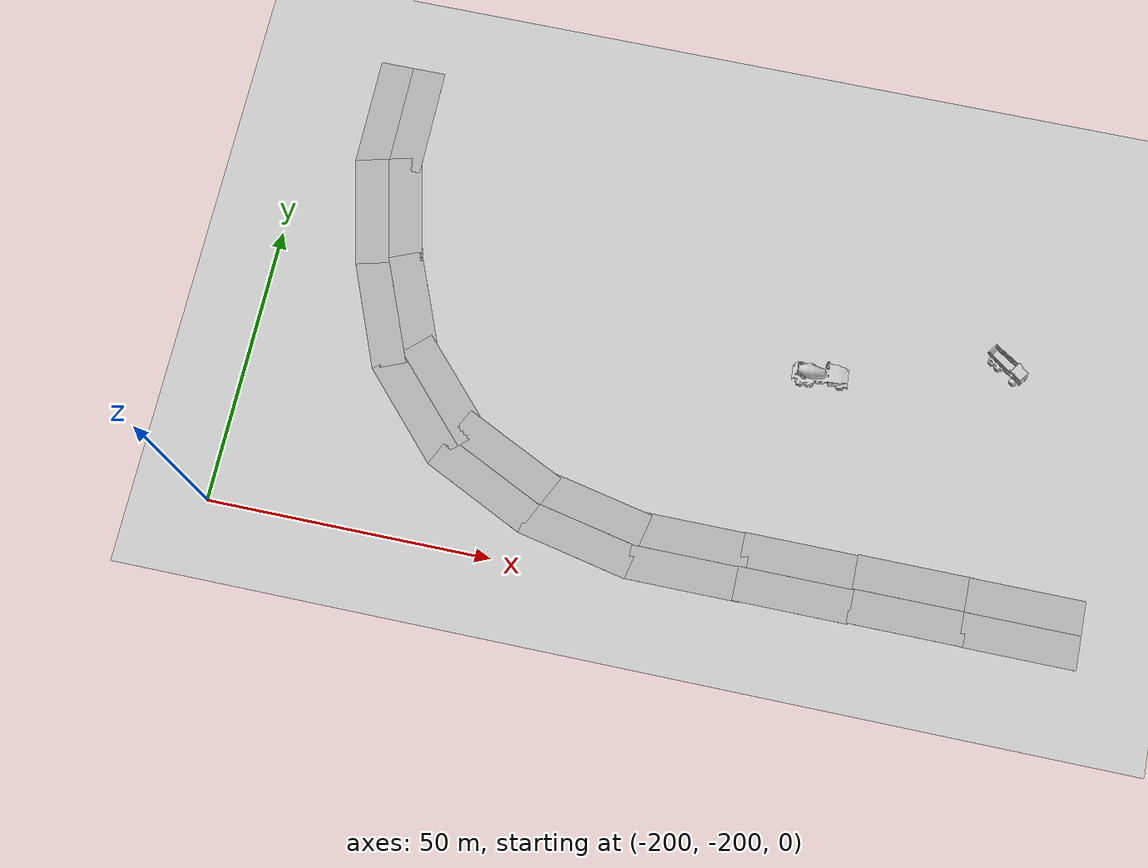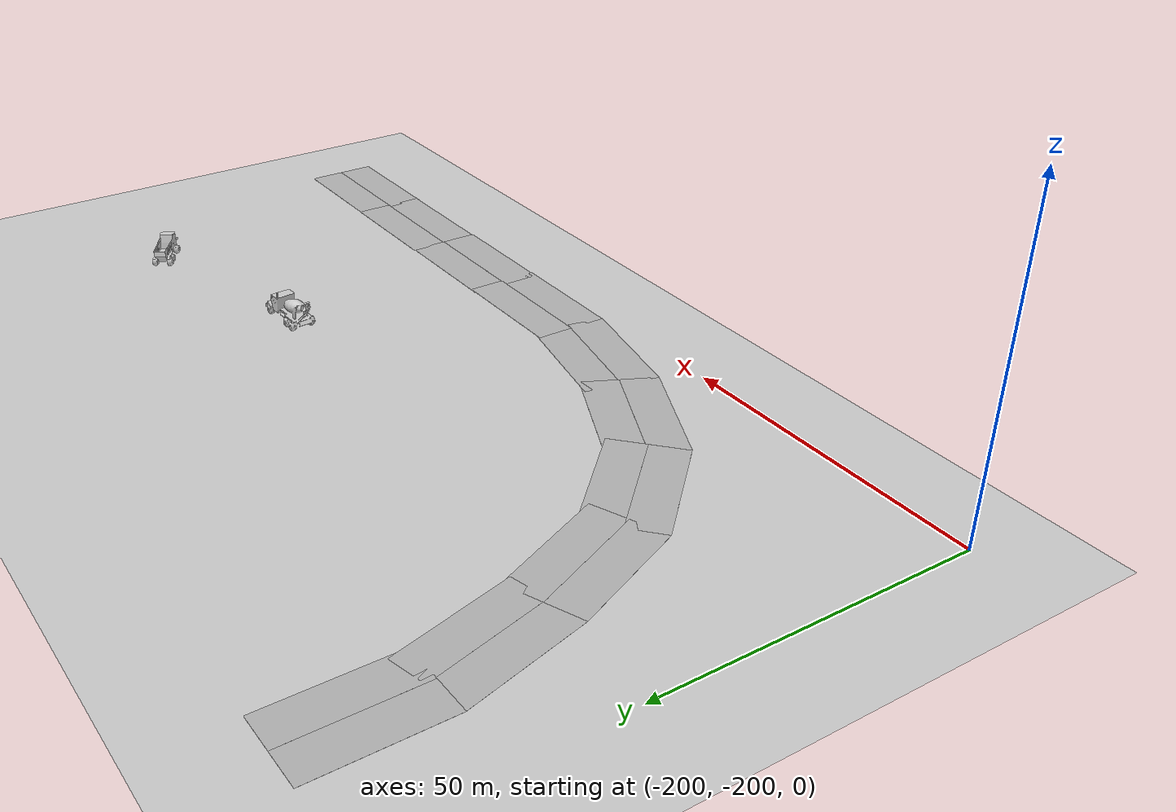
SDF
<sdf version="1.6">
 <world name="default">
  <model name="ground_plane">
   <static>1</static>
   <link name="link">
    <collision name="collision">
     <geometry><plane><normal>0 0 1</normal><size>500 500</size></plane></geometry>
     <surface><friction><ode><mu>100</mu><mu2>50</mu2></ode></friction></surface>
    </collision>
    <visual name="visual">
     <cast_shadows>0</cast_shadows>
     <geometry><plane><normal>0 0 1</normal><size>500 500</size></plane></geometry>
     <material>
      <script><uri>file://media/materials/scripts/gazebo.material</uri><name>Gazebo/Grey</name></script>
     </material>
    </visual>
   </link>
  </model>
  <model name="double_raw_road_2_clone_clone_clone_clone_1_clone_0_clone">
   <model name="raw_road">
    <link name="link">
     <inertial>
      <mass>1</mass>
      <inertia>
       <ixx>0.166667</ixx>
       <ixy>0</ixy>
       <ixz>0</ixz>
       <iyy>0.166667</iyy>
       <iyz>0</iyz>
       <izz>0.166667</izz>
      </inertia>
     </inertial>
     <visual name="visual">
      <geometry><box><size>20 6 0.02</size></box></geometry>
      <material>
       <script>
        <name>asphalt/Diffuse</name>
        <uri>model://raw_road/materials/scripts</uri>
        <uri>model://raw_road/materials/textures</uri>
       </script>
       <shader type="vertex"><normal_map>__default__</normal_map></shader>
       <ambient>0.3 0.3 0.3 1</ambient>
       <diffuse>0.7 0.7 0.7 1</diffuse>
       <specular>0.01 0.01 0.01 1</specular>
       <emissive>0 0 0 1</emissive>
      </material>
      <pose>0 0 0.01 0 -0 0</pose>
     </visual>
     <collision name="collision">
      <pose>0 0 0.01 0 -0 0</pose>
      <geometry><box><size>20 6 0.02</size></box></geometry>
      <surface>
       <friction>
        <ode><mu>1</mu><mu2>1</mu2><fdir1>0 0 0</fdir1><slip1>0</slip1><slip2>0</slip2></ode>
        <torsional>
         <coefficient>1</coefficient>
         <patch_radius>0</patch_radius>
         <surface_radius>0</surface_radius>
         <use_patch_radius>1</use_patch_radius>
         <ode><slip>0</slip></ode>
        </torsional>
       </friction>
       <bounce><restitution_coefficient>0</restitution_coefficient><threshold>1e+06</threshold></bounce>
       <contact>
        <collide_without_contact>0</collide_without_contact>
        <collide_without_contact_bitmask>1</collide_without_contact_bitmask>
        <collide_bitmask>1</collide_bitmask>
        <ode>
         <soft_cfm>0</soft_cfm>
         <soft_erp>0.2</soft_erp>
         <kp>1e+13</kp>
         <kd>1</kd>
         <max_vel>0.01</max_vel>
         <min_depth>0</min_depth>
        </ode>
        <bullet>
         <split_impulse>1</split_impulse>
         <split_impulse_penetration_threshold>-0.01</split_impulse_penetration_threshold>
         <soft_cfm>0</soft_cfm>
         <soft_erp>0.2</soft_erp>
         <kp>1e+13</kp>
         <kd>1</kd>
        </bullet>
       </contact>
      </surface>
     </collision>
    </link>
    <static>1</static>
    <pose>0 -3.0009 0 0 -0 0</pose>
   </model>
   <model name="raw_road_0">
    <link name="link">
     <inertial>
      <mass>1</mass>
      <inertia>
       <ixx>0.166667</ixx>
       <ixy>0</ixy>
       <ixz>0</ixz>
       <iyy>0.166667</iyy>
       <iyz>0</iyz>
       <izz>0.166667</izz>
      </inertia>
     </inertial>
     <visual name="visual">
      <geometry><box><size>20 6 0.02</size></box></geometry>
      <material>
       <script>
        <name>asphalt/Diffuse</name>
        <uri>model://raw_road/materials/scripts</uri>
        <uri>model://raw_road/materials/textures</uri>
       </script>
       <shader type="vertex"><normal_map>__default__</normal_map></shader>
       <ambient>0.3 0.3 0.3 1</ambient>
       <diffuse>0.7 0.7 0.7 1</diffuse>
       <specular>0.01 0.01 0.01 1</specular>
       <emissive>0 0 0 1</emissive>
      </material>
      <pose>0 0 0.01 0 -0 0</pose>
     </visual>
     <collision name="collision">
      <pose>0 0 0.01 0 -0 0</pose>
      <geometry><box><size>20 6 0.02</size></box></geometry>
      <surface>
       <friction>
        <ode><mu>1</mu><mu2>1</mu2><fdir1>0 0 0</fdir1><slip1>0</slip1><slip2>0</slip2></ode>
        <torsional>
         <coefficient>1</coefficient>
         <patch_radius>0</patch_radius>
         <surface_radius>0</surface_radius>
         <use_patch_radius>1</use_patch_radius>
         <ode><slip>0</slip></ode>
        </torsional>
       </friction>
       <bounce><restitution_coefficient>0</restitution_coefficient><threshold>1e+06</threshold></bounce>
       <contact>
        <collide_without_contact>0</collide_without_contact>
        <collide_without_contact_bitmask>1</collide_without_contact_bitmask>
        <collide_bitmask>1</collide_bitmask>
        <ode>
         <soft_cfm>0</soft_cfm>
         <soft_erp>0.2</soft_erp>
         <kp>1e+13</kp>
         <kd>1</kd>
         <max_vel>0.01</max_vel>
         <min_depth>0</min_depth>
        </ode>
        <bullet>
         <split_impulse>1</split_impulse>
         <split_impulse_penetration_threshold>-0.01</split_impulse_penetration_threshold>
         <soft_cfm>0</soft_cfm>
         <soft_erp>0.2</soft_erp>
         <kp>1e+13</kp>
         <kd>1</kd>
        </bullet>
       </contact>
      </surface>
     </collision>
    </link>
    <static>1</static>
    <pose>0 3.0009 0 0 -0 0</pose>
   </model>
   <static>1</static>
   <pose>-184.833 -123.53 0 0 0 -1.56713</pose>
  </model>
  <model name="double_raw_road_3">
   <model name="raw_road">
    <link name="link">
     <inertial>
      <mass>1</mass>
      <inertia>
       <ixx>0.166667</ixx>
       <ixy>0</ixy>
       <ixz>0</ixz>
       <iyy>0.166667</iyy>
       <iyz>0</iyz>
       <izz>0.166667</izz>
      </inertia>
     </inertial>
     <visual name="visual">
      <geometry><box><size>20 6 0.02</size></box></geometry>
      <material>
       <script>
        <name>asphalt/Diffuse</name>
        <uri>model://raw_road/materials/scripts</uri>
        <uri>model://raw_road/materials/textures</uri>
       </script>
       <shader type="vertex"><normal_map>__default__</normal_map></shader>
       <ambient>0.3 0.3 0.3 1</ambient>
       <diffuse>0.7 0.7 0.7 1</diffuse>
       <specular>0.01 0.01 0.01 1</specular>
       <emissive>0 0 0 1</emissive>
      </material>
      <pose>0 0 0.01 0 -0 0</pose>
     </visual>
     <collision name="collision">
      <pose>0 0 0.01 0 -0 0</pose>
      <geometry><box><size>20 6 0.02</size></box></geometry>
      <surface>
       <friction>
        <ode><mu>1</mu><mu2>1</mu2><fdir1>0 0 0</fdir1><slip1>0</slip1><slip2>0</slip2></ode>
        <torsional>
         <coefficient>1</coefficient>
         <patch_radius>0</patch_radius>
         <surface_radius>0</surface_radius>
         <use_patch_radius>1</use_patch_radius>
         <ode><slip>0</slip></ode>
        </torsional>
       </friction>
       <bounce><restitution_coefficient>0</restitution_coefficient><threshold>1e+06</threshold></bounce>
       <contact>
        <collide_without_contact>0</collide_without_contact>
        <collide_without_contact_bitmask>1</collide_without_contact_bitmask>
        <collide_bitmask>1</collide_bitmask>
        <ode>
         <soft_cfm>0</soft_cfm>
         <soft_erp>0.2</soft_erp>
         <kp>1e+13</kp>
         <kd>1</kd>
         <max_vel>0.01</max_vel>
         <min_depth>0</min_depth>
        </ode>
        <bullet>
         <split_impulse>1</split_impulse>
         <split_impulse_penetration_threshold>-0.01</split_impulse_penetration_threshold>
         <soft_cfm>0</soft_cfm>
         <soft_erp>0.2</soft_erp>
         <kp>1e+13</kp>
         <kd>1</kd>
        </bullet>
       </contact>
      </surface>
     </collision>
    </link>
    <static>1</static>
    <pose>0 -3.0009 0 0 -0 0</pose>
   </model>
   <model name="raw_road_0">
    <link name="link">
     <inertial>
      <mass>1</mass>
      <inertia>
       <ixx>0.166667</ixx>
       <ixy>0</ixy>
       <ixz>0</ixz>
       <iyy>0.166667</iyy>
       <iyz>0</iyz>
       <izz>0.166667</izz>
      </inertia>
     </inertial>
     <visual name="visual">
      <geometry><box><size>20 6 0.02</size></box></geometry>
      <material>
       <script>
        <name>asphalt/Diffuse</name>
        <uri>model://raw_road/materials/scripts</uri>
        <uri>model://raw_road/materials/textures</uri>
       </script>
       <shader type="vertex"><normal_map>__default__</normal_map></shader>
       <ambient>0.3 0.3 0.3 1</ambient>
       <diffuse>0.7 0.7 0.7 1</diffuse>
       <specular>0.01 0.01 0.01 1</specular>
       <emissive>0 0 0 1</emissive>
      </material>
      <pose>0 0 0.01 0 -0 0</pose>
     </visual>
     <collision name="collision">
      <pose>0 0 0.01 0 -0 0</pose>
      <geometry><box><size>20 6 0.02</size></box></geometry>
      <surface>
       <friction>
        <ode><mu>1</mu><mu2>1</mu2><fdir1>0 0 0</fdir1><slip1>0</slip1><slip2>0</slip2></ode>
        <torsional>
         <coefficient>1</coefficient>
         <patch_radius>0</patch_radius>
         <surface_radius>0</surface_radius>
         <use_patch_radius>1</use_patch_radius>
         <ode><slip>0</slip></ode>
        </torsional>
       </friction>
       <bounce><restitution_coefficient>0</restitution_coefficient><threshold>1e+06</threshold></bounce>
       <contact>
        <collide_without_contact>0</collide_without_contact>
        <collide_without_contact_bitmask>1</collide_without_contact_bitmask>
        <collide_bitmask>1</collide_bitmask>
        <ode>
         <soft_cfm>0</soft_cfm>
         <soft_erp>0.2</soft_erp>
         <kp>1e+13</kp>
         <kd>1</kd>
         <max_vel>0.01</max_vel>
         <min_depth>0</min_depth>
        </ode>
        <bullet>
         <split_impulse>1</split_impulse>
         <split_impulse_penetration_threshold>-0.01</split_impulse_penetration_threshold>
         <soft_cfm>0</soft_cfm>
         <soft_erp>0.2</soft_erp>
         <kp>1e+13</kp>
         <kd>1</kd>
        </bullet>
       </contact>
      </surface>
     </collision>
    </link>
    <static>1</static>
    <pose>0 3.0009 0 0 -0 0</pose>
   </model>
   <static>1</static>
   <pose>-116.883 -192.58 0 0 -0 0</pose>
  </model>
  <model name="double_raw_road_2_clone_clone_clone_clone_1_clone_0_clone_clone">
   <model name="raw_road">
    <link name="link">
     <inertial>
      <mass>1</mass>
      <inertia>
       <ixx>0.166667</ixx>
       <ixy>0</ixy>
       <ixz>0</ixz>
       <iyy>0.166667</iyy>
       <iyz>0</iyz>
       <izz>0.166667</izz>
      </inertia>
     </inertial>
     <visual name="visual">
      <geometry><box><size>20 6 0.02</size></box></geometry>
      <material>
       <script>
        <name>asphalt/Diffuse</name>
        <uri>model://raw_road/materials/scripts</uri>
        <uri>model://raw_road/materials/textures</uri>
       </script>
       <shader type="vertex"><normal_map>__default__</normal_map></shader>
       <ambient>0.3 0.3 0.3 1</ambient>
       <diffuse>0.7 0.7 0.7 1</diffuse>
       <specular>0.01 0.01 0.01 1</specular>
       <emissive>0 0 0 1</emissive>
      </material>
      <pose>0 0 0.01 0 -0 0</pose>
     </visual>
     <collision name="collision">
      <pose>0 0 0.01 0 -0 0</pose>
      <geometry><box><size>20 6 0.02</size></box></geometry>
      <surface>
       <friction>
        <ode><mu>1</mu><mu2>1</mu2><fdir1>0 0 0</fdir1><slip1>0</slip1><slip2>0</slip2></ode>
        <torsional>
         <coefficient>1</coefficient>
         <patch_radius>0</patch_radius>
         <surface_radius>0</surface_radius>
         <use_patch_radius>1</use_patch_radius>
         <ode><slip>0</slip></ode>
        </torsional>
       </friction>
       <bounce><restitution_coefficient>0</restitution_coefficient><threshold>1e+06</threshold></bounce>
       <contact>
        <collide_without_contact>0</collide_without_contact>
        <collide_without_contact_bitmask>1</collide_without_contact_bitmask>
        <collide_bitmask>1</collide_bitmask>
        <ode>
         <soft_cfm>0</soft_cfm>
         <soft_erp>0.2</soft_erp>
         <kp>1e+13</kp>
         <kd>1</kd>
         <max_vel>0.01</max_vel>
         <min_depth>0</min_depth>
        </ode>
        <bullet>
         <split_impulse>1</split_impulse>
         <split_impulse_penetration_threshold>-0.01</split_impulse_penetration_threshold>
         <soft_cfm>0</soft_cfm>
         <soft_erp>0.2</soft_erp>
         <kp>1e+13</kp>
         <kd>1</kd>
        </bullet>
       </contact>
      </surface>
     </collision>
    </link>
    <static>1</static>
    <pose>0 -3.0009 0 0 -0 0</pose>
   </model>
   <model name="raw_road_0">
    <link name="link">
     <inertial>
      <mass>1</mass>
      <inertia>
       <ixx>0.166667</ixx>
       <ixy>0</ixy>
       <ixz>0</ixz>
       <iyy>0.166667</iyy>
       <iyz>0</iyz>
       <izz>0.166667</izz>
      </inertia>
     </inertial>
     <visual name="visual">
      <geometry><box><size>20 6 0.02</size></box></geometry>
      <material>
       <script>
        <name>asphalt/Diffuse</name>
        <uri>model://raw_road/materials/scripts</uri>
        <uri>model://raw_road/materials/textures</uri>
       </script>
       <shader type="vertex"><normal_map>__default__</normal_map></shader>
       <ambient>0.3 0.3 0.3 1</ambient>
       <diffuse>0.7 0.7 0.7 1</diffuse>
       <specular>0.01 0.01 0.01 1</specular>
       <emissive>0 0 0 1</emissive>
      </material>
      <pose>0 0 0.01 0 -0 0</pose>
     </visual>
     <collision name="collision">
      <pose>0 0 0.01 0 -0 0</pose>
      <geometry><box><size>20 6 0.02</size></box></geometry>
      <surface>
       <friction>
        <ode><mu>1</mu><mu2>1</mu2><fdir1>0 0 0</fdir1><slip1>0</slip1><slip2>0</slip2></ode>
        <torsional>
         <coefficient>1</coefficient>
         <patch_radius>0</patch_radius>
         <surface_radius>0</surface_radius>
         <use_patch_radius>1</use_patch_radius>
         <ode><slip>0</slip></ode>
        </torsional>
       </friction>
       <bounce><restitution_coefficient>0</restitution_coefficient><threshold>1e+06</threshold></bounce>
       <contact>
        <collide_without_contact>0</collide_without_contact>
        <collide_without_contact_bitmask>1</collide_without_contact_bitmask>
        <collide_bitmask>1</collide_bitmask>
        <ode>
         <soft_cfm>0</soft_cfm>
         <soft_erp>0.2</soft_erp>
         <kp>1e+13</kp>
         <kd>1</kd>
         <max_vel>0.01</max_vel>
         <min_depth>0</min_depth>
        </ode>
        <bullet>
         <split_impulse>1</split_impulse>
         <split_impulse_penetration_threshold>-0.01</split_impulse_penetration_threshold>
         <soft_cfm>0</soft_cfm>
         <soft_erp>0.2</soft_erp>
         <kp>1e+13</kp>
         <kd>1</kd>
        </bullet>
       </contact>
      </surface>
     </collision>
    </link>
    <static>1</static>
    <pose>0 3.0009 0 0 -0 0</pose>
   </model>
   <static>1</static>
   <pose>-182.508 -141.714 0 0 0 -1.32058</pose>
  </model>
  <model name="double_raw_road_2_clone_clone_clone_clone_1_clone_0_clone_clone_clone">
   <model name="raw_road">
    <link name="link">
     <inertial>
      <mass>1</mass>
      <inertia>
       <ixx>0.166667</ixx>
       <ixy>0</ixy>
       <ixz>0</ixz>
       <iyy>0.166667</iyy>
       <iyz>0</iyz>
       <izz>0.166667</izz>
      </inertia>
     </inertial>
     <visual name="visual">
      <geometry><box><size>20 6 0.02</size></box></geometry>
      <material>
       <script>
        <name>asphalt/Diffuse</name>
        <uri>model://raw_road/materials/scripts</uri>
        <uri>model://raw_road/materials/textures</uri>
       </script>
       <shader type="vertex"><normal_map>__default__</normal_map></shader>
       <ambient>0.3 0.3 0.3 1</ambient>
       <diffuse>0.7 0.7 0.7 1</diffuse>
       <specular>0.01 0.01 0.01 1</specular>
       <emissive>0 0 0 1</emissive>
      </material>
      <pose>0 0 0.01 0 -0 0</pose>
     </visual>
     <collision name="collision">
      <pose>0 0 0.01 0 -0 0</pose>
      <geometry><box><size>20 6 0.02</size></box></geometry>
      <surface>
       <friction>
        <ode><mu>1</mu><mu2>1</mu2><fdir1>0 0 0</fdir1><slip1>0</slip1><slip2>0</slip2></ode>
        <torsional>
         <coefficient>1</coefficient>
         <patch_radius>0</patch_radius>
         <surface_radius>0</surface_radius>
         <use_patch_radius>1</use_patch_radius>
         <ode><slip>0</slip></ode>
        </torsional>
       </friction>
       <bounce><restitution_coefficient>0</restitution_coefficient><threshold>1e+06</threshold></bounce>
       <contact>
        <collide_without_contact>0</collide_without_contact>
        <collide_without_contact_bitmask>1</collide_without_contact_bitmask>
        <collide_bitmask>1</collide_bitmask>
        <ode>
         <soft_cfm>0</soft_cfm>
         <soft_erp>0.2</soft_erp>
         <kp>1e+13</kp>
         <kd>1</kd>
         <max_vel>0.01</max_vel>
         <min_depth>0</min_depth>
        </ode>
        <bullet>
         <split_impulse>1</split_impulse>
         <split_impulse_penetration_threshold>-0.01</split_impulse_penetration_threshold>
         <soft_cfm>0</soft_cfm>
         <soft_erp>0.2</soft_erp>
         <kp>1e+13</kp>
         <kd>1</kd>
        </bullet>
       </contact>
      </surface>
     </collision>
    </link>
    <static>1</static>
    <pose>0 -3.0009 0 0 -0 0</pose>
   </model>
   <model name="raw_road_0">
    <link name="link">
     <inertial>
      <mass>1</mass>
      <inertia>
       <ixx>0.166667</ixx>
       <ixy>0</ixy>
       <ixz>0</ixz>
       <iyy>0.166667</iyy>
       <iyz>0</iyz>
       <izz>0.166667</izz>
      </inertia>
     </inertial>
     <visual name="visual">
      <geometry><box><size>20 6 0.02</size></box></geometry>
      <material>
       <script>
        <name>asphalt/Diffuse</name>
        <uri>model://raw_road/materials/scripts</uri>
        <uri>model://raw_road/materials/textures</uri>
       </script>
       <shader type="vertex"><normal_map>__default__</normal_map></shader>
       <ambient>0.3 0.3 0.3 1</ambient>
       <diffuse>0.7 0.7 0.7 1</diffuse>
       <specular>0.01 0.01 0.01 1</specular>
       <emissive>0 0 0 1</emissive>
      </material>
      <pose>0 0 0.01 0 -0 0</pose>
     </visual>
     <collision name="collision">
      <pose>0 0 0.01 0 -0 0</pose>
      <geometry><box><size>20 6 0.02</size></box></geometry>
      <surface>
       <friction>
        <ode><mu>1</mu><mu2>1</mu2><fdir1>0 0 0</fdir1><slip1>0</slip1><slip2>0</slip2></ode>
        <torsional>
         <coefficient>1</coefficient>
         <patch_radius>0</patch_radius>
         <surface_radius>0</surface_radius>
         <use_patch_radius>1</use_patch_radius>
         <ode><slip>0</slip></ode>
        </torsional>
       </friction>
       <bounce><restitution_coefficient>0</restitution_coefficient><threshold>1e+06</threshold></bounce>
       <contact>
        <collide_without_contact>0</collide_without_contact>
        <collide_without_contact_bitmask>1</collide_without_contact_bitmask>
        <collide_bitmask>1</collide_bitmask>
        <ode>
         <soft_cfm>0</soft_cfm>
         <soft_erp>0.2</soft_erp>
         <kp>1e+13</kp>
         <kd>1</kd>
         <max_vel>0.01</max_vel>
         <min_depth>0</min_depth>
        </ode>
        <bullet>
         <split_impulse>1</split_impulse>
         <split_impulse_penetration_threshold>-0.01</split_impulse_penetration_threshold>
         <soft_cfm>0</soft_cfm>
         <soft_erp>0.2</soft_erp>
         <kp>1e+13</kp>
         <kd>1</kd>
        </bullet>
       </contact>
      </surface>
     </collision>
    </link>
    <static>1</static>
    <pose>0 3.0009 0 0 -0 0</pose>
   </model>
   <static>1</static>
   <pose>-176.448 -159.75 0 0 0 -1.17376</pose>
  </model>
  <model name="double_raw_road_2_clone_clone_clone_clone_1_clone_0_clone_clone_clone_clone">
   <model name="raw_road">
    <link name="link">
     <inertial>
      <mass>1</mass>
      <inertia>
       <ixx>0.166667</ixx>
       <ixy>0</ixy>
       <ixz>0</ixz>
       <iyy>0.166667</iyy>
       <iyz>0</iyz>
       <izz>0.166667</izz>
      </inertia>
     </inertial>
     <visual name="visual">
      <geometry><box><size>20 6 0.02</size></box></geometry>
      <material>
       <script>
        <name>asphalt/Diffuse</name>
        <uri>model://raw_road/materials/scripts</uri>
        <uri>model://raw_road/materials/textures</uri>
       </script>
       <shader type="vertex"><normal_map>__default__</normal_map></shader>
       <ambient>0.3 0.3 0.3 1</ambient>
       <diffuse>0.7 0.7 0.7 1</diffuse>
       <specular>0.01 0.01 0.01 1</specular>
       <emissive>0 0 0 1</emissive>
      </material>
      <pose>0 0 0.01 0 -0 0</pose>
     </visual>
     <collision name="collision">
      <pose>0 0 0.01 0 -0 0</pose>
      <geometry><box><size>20 6 0.02</size></box></geometry>
      <surface>
       <friction>
        <ode><mu>1</mu><mu2>1</mu2><fdir1>0 0 0</fdir1><slip1>0</slip1><slip2>0</slip2></ode>
        <torsional>
         <coefficient>1</coefficient>
         <patch_radius>0</patch_radius>
         <surface_radius>0</surface_radius>
         <use_patch_radius>1</use_patch_radius>
         <ode><slip>0</slip></ode>
        </torsional>
       </friction>
       <bounce><restitution_coefficient>0</restitution_coefficient><threshold>1e+06</threshold></bounce>
       <contact>
        <collide_without_contact>0</collide_without_contact>
        <collide_without_contact_bitmask>1</collide_without_contact_bitmask>
        <collide_bitmask>1</collide_bitmask>
        <ode>
         <soft_cfm>0</soft_cfm>
         <soft_erp>0.2</soft_erp>
         <kp>1e+13</kp>
         <kd>1</kd>
         <max_vel>0.01</max_vel>
         <min_depth>0</min_depth>
        </ode>
        <bullet>
         <split_impulse>1</split_impulse>
         <split_impulse_penetration_threshold>-0.01</split_impulse_penetration_threshold>
         <soft_cfm>0</soft_cfm>
         <soft_erp>0.2</soft_erp>
         <kp>1e+13</kp>
         <kd>1</kd>
        </bullet>
       </contact>
      </surface>
     </collision>
    </link>
    <static>1</static>
    <pose>0 -3.0009 0 0 -0 0</pose>
   </model>
   <model name="raw_road_0">
    <link name="link">
     <inertial>
      <mass>1</mass>
      <inertia>
       <ixx>0.166667</ixx>
       <ixy>0</ixy>
       <ixz>0</ixz>
       <iyy>0.166667</iyy>
       <iyz>0</iyz>
       <izz>0.166667</izz>
      </inertia>
     </inertial>
     <visual name="visual">
      <geometry><box><size>20 6 0.02</size></box></geometry>
      <material>
       <script>
        <name>asphalt/Diffuse</name>
        <uri>model://raw_road/materials/scripts</uri>
        <uri>model://raw_road/materials/textures</uri>
       </script>
       <shader type="vertex"><normal_map>__default__</normal_map></shader>
       <ambient>0.3 0.3 0.3 1</ambient>
       <diffuse>0.7 0.7 0.7 1</diffuse>
       <specular>0.01 0.01 0.01 1</specular>
       <emissive>0 0 0 1</emissive>
      </material>
      <pose>0 0 0.01 0 -0 0</pose>
     </visual>
     <collision name="collision">
      <pose>0 0 0.01 0 -0 0</pose>
      <geometry><box><size>20 6 0.02</size></box></geometry>
      <surface>
       <friction>
        <ode><mu>1</mu><mu2>1</mu2><fdir1>0 0 0</fdir1><slip1>0</slip1><slip2>0</slip2></ode>
        <torsional>
         <coefficient>1</coefficient>
         <patch_radius>0</patch_radius>
         <surface_radius>0</surface_radius>
         <use_patch_radius>1</use_patch_radius>
         <ode><slip>0</slip></ode>
        </torsional>
       </friction>
       <bounce><restitution_coefficient>0</restitution_coefficient><threshold>1e+06</threshold></bounce>
       <contact>
        <collide_without_contact>0</collide_without_contact>
        <collide_without_contact_bitmask>1</collide_without_contact_bitmask>
        <collide_bitmask>1</collide_bitmask>
        <ode>
         <soft_cfm>0</soft_cfm>
         <soft_erp>0.2</soft_erp>
         <kp>1e+13</kp>
         <kd>1</kd>
         <max_vel>0.01</max_vel>
         <min_depth>0</min_depth>
        </ode>
        <bullet>
         <split_impulse>1</split_impulse>
         <split_impulse_penetration_threshold>-0.01</split_impulse_penetration_threshold>
         <soft_cfm>0</soft_cfm>
         <soft_erp>0.2</soft_erp>
         <kp>1e+13</kp>
         <kd>1</kd>
        </bullet>
       </contact>
      </surface>
     </collision>
    </link>
    <static>1</static>
    <pose>0 3.0009 0 0 -0 0</pose>
   </model>
   <static>1</static>
   <pose>-166.879 -174.491 0 0 0 -0.821411</pose>
  </model>
  <model name="double_raw_road_2_clone_clone_clone_clone_1_clone_0_clone_clone_clone_clone_clone">
   <model name="raw_road">
    <link name="link">
     <inertial>
      <mass>1</mass>
      <inertia>
       <ixx>0.166667</ixx>
       <ixy>0</ixy>
       <ixz>0</ixz>
       <iyy>0.166667</iyy>
       <iyz>0</iyz>
       <izz>0.166667</izz>
      </inertia>
     </inertial>
     <visual name="visual">
      <geometry><box><size>20 6 0.02</size></box></geometry>
      <material>
       <script>
        <name>asphalt/Diffuse</name>
        <uri>model://raw_road/materials/scripts</uri>
        <uri>model://raw_road/materials/textures</uri>
       </script>
       <shader type="vertex"><normal_map>__default__</normal_map></shader>
       <ambient>0.3 0.3 0.3 1</ambient>
       <diffuse>0.7 0.7 0.7 1</diffuse>
       <specular>0.01 0.01 0.01 1</specular>
       <emissive>0 0 0 1</emissive>
      </material>
      <pose>0 0 0.01 0 -0 0</pose>
     </visual>
     <collision name="collision">
      <pose>0 0 0.01 0 -0 0</pose>
      <geometry><box><size>20 6 0.02</size></box></geometry>
      <surface>
       <friction>
        <ode><mu>1</mu><mu2>1</mu2><fdir1>0 0 0</fdir1><slip1>0</slip1><slip2>0</slip2></ode>
        <torsional>
         <coefficient>1</coefficient>
         <patch_radius>0</patch_radius>
         <surface_radius>0</surface_radius>
         <use_patch_radius>1</use_patch_radius>
         <ode><slip>0</slip></ode>
        </torsional>
       </friction>
       <bounce><restitution_coefficient>0</restitution_coefficient><threshold>1e+06</threshold></bounce>
       <contact>
        <collide_without_contact>0</collide_without_contact>
        <collide_without_contact_bitmask>1</collide_without_contact_bitmask>
        <collide_bitmask>1</collide_bitmask>
        <ode>
         <soft_cfm>0</soft_cfm>
         <soft_erp>0.2</soft_erp>
         <kp>1e+13</kp>
         <kd>1</kd>
         <max_vel>0.01</max_vel>
         <min_depth>0</min_depth>
        </ode>
        <bullet>
         <split_impulse>1</split_impulse>
         <split_impulse_penetration_threshold>-0.01</split_impulse_penetration_threshold>
         <soft_cfm>0</soft_cfm>
         <soft_erp>0.2</soft_erp>
         <kp>1e+13</kp>
         <kd>1</kd>
        </bullet>
       </contact>
      </surface>
     </collision>
    </link>
    <static>1</static>
    <pose>0 -3.0009 0 0 -0 0</pose>
   </model>
   <model name="raw_road_0">
    <link name="link">
     <inertial>
      <mass>1</mass>
      <inertia>
       <ixx>0.166667</ixx>
       <ixy>0</ixy>
       <ixz>0</ixz>
       <iyy>0.166667</iyy>
       <iyz>0</iyz>
       <izz>0.166667</izz>
      </inertia>
     </inertial>
     <visual name="visual">
      <geometry><box><size>20 6 0.02</size></box></geometry>
      <material>
       <script>
        <name>asphalt/Diffuse</name>
        <uri>model://raw_road/materials/scripts</uri>
        <uri>model://raw_road/materials/textures</uri>
       </script>
       <shader type="vertex"><normal_map>__default__</normal_map></shader>
       <ambient>0.3 0.3 0.3 1</ambient>
       <diffuse>0.7 0.7 0.7 1</diffuse>
       <specular>0.01 0.01 0.01 1</specular>
       <emissive>0 0 0 1</emissive>
      </material>
      <pose>0 0 0.01 0 -0 0</pose>
     </visual>
     <collision name="collision">
      <pose>0 0 0.01 0 -0 0</pose>
      <geometry><box><size>20 6 0.02</size></box></geometry>
      <surface>
       <friction>
        <ode><mu>1</mu><mu2>1</mu2><fdir1>0 0 0</fdir1><slip1>0</slip1><slip2>0</slip2></ode>
        <torsional>
         <coefficient>1</coefficient>
         <patch_radius>0</patch_radius>
         <surface_radius>0</surface_radius>
         <use_patch_radius>1</use_patch_radius>
         <ode><slip>0</slip></ode>
        </torsional>
       </friction>
       <bounce><restitution_coefficient>0</restitution_coefficient><threshold>1e+06</threshold></bounce>
       <contact>
        <collide_without_contact>0</collide_without_contact>
        <collide_without_contact_bitmask>1</collide_without_contact_bitmask>
        <collide_bitmask>1</collide_bitmask>
        <ode>
         <soft_cfm>0</soft_cfm>
         <soft_erp>0.2</soft_erp>
         <kp>1e+13</kp>
         <kd>1</kd>
         <max_vel>0.01</max_vel>
         <min_depth>0</min_depth>
        </ode>
        <bullet>
         <split_impulse>1</split_impulse>
         <split_impulse_penetration_threshold>-0.01</split_impulse_penetration_threshold>
         <soft_cfm>0</soft_cfm>
         <soft_erp>0.2</soft_erp>
         <kp>1e+13</kp>
         <kd>1</kd>
        </bullet>
       </contact>
      </surface>
     </collision>
    </link>
    <static>1</static>
    <pose>0 3.0009 0 0 -0 0</pose>
   </model>
   <static>1</static>
   <pose>-152.835 -184.806 0 0 0 -0.445724</pose>
  </model>
  <model name="double_raw_road_2_clone_clone_clone_clone_1_clone_0_clone_clone_clone_clone_clone_clone">
   <model name="raw_road">
    <link name="link">
     <inertial>
      <mass>1</mass>
      <inertia>
       <ixx>0.166667</ixx>
       <ixy>0</ixy>
       <ixz>0</ixz>
       <iyy>0.166667</iyy>
       <iyz>0</iyz>
       <izz>0.166667</izz>
      </inertia>
     </inertial>
     <visual name="visual">
      <geometry><box><size>20 6 0.02</size></box></geometry>
      <material>
       <script>
        <name>asphalt/Diffuse</name>
        <uri>model://raw_road/materials/scripts</uri>
        <uri>model://raw_road/materials/textures</uri>
       </script>
       <shader type="vertex"><normal_map>__default__</normal_map></shader>
       <ambient>0.3 0.3 0.3 1</ambient>
       <diffuse>0.7 0.7 0.7 1</diffuse>
       <specular>0.01 0.01 0.01 1</specular>
       <emissive>0 0 0 1</emissive>
      </material>
      <pose>0 0 0.01 0 -0 0</pose>
     </visual>
     <collision name="collision">
      <pose>0 0 0.01 0 -0 0</pose>
      <geometry><box><size>20 6 0.02</size></box></geometry>
      <surface>
       <friction>
        <ode><mu>1</mu><mu2>1</mu2><fdir1>0 0 0</fdir1><slip1>0</slip1><slip2>0</slip2></ode>
        <torsional>
         <coefficient>1</coefficient>
         <patch_radius>0</patch_radius>
         <surface_radius>0</surface_radius>
         <use_patch_radius>1</use_patch_radius>
         <ode><slip>0</slip></ode>
        </torsional>
       </friction>
       <bounce><restitution_coefficient>0</restitution_coefficient><threshold>1e+06</threshold></bounce>
       <contact>
        <collide_without_contact>0</collide_without_contact>
        <collide_without_contact_bitmask>1</collide_without_contact_bitmask>
        <collide_bitmask>1</collide_bitmask>
        <ode>
         <soft_cfm>0</soft_cfm>
         <soft_erp>0.2</soft_erp>
         <kp>1e+13</kp>
         <kd>1</kd>
         <max_vel>0.01</max_vel>
         <min_depth>0</min_depth>
        </ode>
        <bullet>
         <split_impulse>1</split_impulse>
         <split_impulse_penetration_threshold>-0.01</split_impulse_penetration_threshold>
         <soft_cfm>0</soft_cfm>
         <soft_erp>0.2</soft_erp>
         <kp>1e+13</kp>
         <kd>1</kd>
        </bullet>
       </contact>
      </surface>
     </collision>
    </link>
    <static>1</static>
    <pose>0 -3.0009 0 0 -0 0</pose>
   </model>
   <model name="raw_road_0">
    <link name="link">
     <inertial>
      <mass>1</mass>
      <inertia>
       <ixx>0.166667</ixx>
       <ixy>0</ixy>
       <ixz>0</ixz>
       <iyy>0.166667</iyy>
       <iyz>0</iyz>
       <izz>0.166667</izz>
      </inertia>
     </inertial>
     <visual name="visual">
      <geometry><box><size>20 6 0.02</size></box></geometry>
      <material>
       <script>
        <name>asphalt/Diffuse</name>
        <uri>model://raw_road/materials/scripts</uri>
        <uri>model://raw_road/materials/textures</uri>
       </script>
       <shader type="vertex"><normal_map>__default__</normal_map></shader>
       <ambient>0.3 0.3 0.3 1</ambient>
       <diffuse>0.7 0.7 0.7 1</diffuse>
       <specular>0.01 0.01 0.01 1</specular>
       <emissive>0 0 0 1</emissive>
      </material>
      <pose>0 0 0.01 0 -0 0</pose>
     </visual>
     <collision name="collision">
      <pose>0 0 0.01 0 -0 0</pose>
      <geometry><box><size>20 6 0.02</size></box></geometry>
      <surface>
       <friction>
        <ode><mu>1</mu><mu2>1</mu2><fdir1>0 0 0</fdir1><slip1>0</slip1><slip2>0</slip2></ode>
        <torsional>
         <coefficient>1</coefficient>
         <patch_radius>0</patch_radius>
         <surface_radius>0</surface_radius>
         <use_patch_radius>1</use_patch_radius>
         <ode><slip>0</slip></ode>
        </torsional>
       </friction>
       <bounce><restitution_coefficient>0</restitution_coefficient><threshold>1e+06</threshold></bounce>
       <contact>
        <collide_without_contact>0</collide_without_contact>
        <collide_without_contact_bitmask>1</collide_without_contact_bitmask>
        <collide_bitmask>1</collide_bitmask>
        <ode>
         <soft_cfm>0</soft_cfm>
         <soft_erp>0.2</soft_erp>
         <kp>1e+13</kp>
         <kd>1</kd>
         <max_vel>0.01</max_vel>
         <min_depth>0</min_depth>
        </ode>
        <bullet>
         <split_impulse>1</split_impulse>
         <split_impulse_penetration_threshold>-0.01</split_impulse_penetration_threshold>
         <soft_cfm>0</soft_cfm>
         <soft_erp>0.2</soft_erp>
         <kp>1e+13</kp>
         <kd>1</kd>
        </bullet>
       </contact>
      </surface>
     </collision>
    </link>
    <static>1</static>
    <pose>0 3.0009 0 0 -0 0</pose>
   </model>
   <static>1</static>
   <pose>-135.446 -190.694 0 0 0 -0.20754</pose>
  </model>
  <model name="double_raw_road_4">
   <model name="raw_road">
    <link name="link">
     <inertial>
      <mass>1</mass>
      <inertia>
       <ixx>0.166667</ixx>
       <ixy>0</ixy>
       <ixz>0</ixz>
       <iyy>0.166667</iyy>
       <iyz>0</iyz>
       <izz>0.166667</izz>
      </inertia>
     </inertial>
     <visual name="visual">
      <geometry><box><size>20 6 0.02</size></box></geometry>
      <material>
       <script>
        <name>asphalt/Diffuse</name>
        <uri>model://raw_road/materials/scripts</uri>
        <uri>model://raw_road/materials/textures</uri>
       </script>
       <shader type="vertex"><normal_map>__default__</normal_map></shader>
       <ambient>0.3 0.3 0.3 1</ambient>
       <diffuse>0.7 0.7 0.7 1</diffuse>
       <specular>0.01 0.01 0.01 1</specular>
       <emissive>0 0 0 1</emissive>
      </material>
      <pose>0 0 0.01 0 -0 0</pose>
     </visual>
     <collision name="collision">
      <pose>0 0 0.01 0 -0 0</pose>
      <geometry><box><size>20 6 0.02</size></box></geometry>
      <surface>
       <friction>
        <ode><mu>1</mu><mu2>1</mu2><fdir1>0 0 0</fdir1><slip1>0</slip1><slip2>0</slip2></ode>
        <torsional>
         <coefficient>1</coefficient>
         <patch_radius>0</patch_radius>
         <surface_radius>0</surface_radius>
         <use_patch_radius>1</use_patch_radius>
         <ode><slip>0</slip></ode>
        </torsional>
       </friction>
       <bounce><restitution_coefficient>0</restitution_coefficient><threshold>1e+06</threshold></bounce>
       <contact>
        <collide_without_contact>0</collide_without_contact>
        <collide_without_contact_bitmask>1</collide_without_contact_bitmask>
        <collide_bitmask>1</collide_bitmask>
        <ode>
         <soft_cfm>0</soft_cfm>
         <soft_erp>0.2</soft_erp>
         <kp>1e+13</kp>
         <kd>1</kd>
         <max_vel>0.01</max_vel>
         <min_depth>0</min_depth>
        </ode>
        <bullet>
         <split_impulse>1</split_impulse>
         <split_impulse_penetration_threshold>-0.01</split_impulse_penetration_threshold>
         <soft_cfm>0</soft_cfm>
         <soft_erp>0.2</soft_erp>
         <kp>1e+13</kp>
         <kd>1</kd>
        </bullet>
       </contact>
      </surface>
     </collision>
    </link>
    <static>1</static>
    <pose>0 -3.0009 0 0 -0 0</pose>
   </model>
   <model name="raw_road_0">
    <link name="link">
     <inertial>
      <mass>1</mass>
      <inertia>
       <ixx>0.166667</ixx>
       <ixy>0</ixy>
       <ixz>0</ixz>
       <iyy>0.166667</iyy>
       <iyz>0</iyz>
       <izz>0.166667</izz>
      </inertia>
     </inertial>
     <visual name="visual">
      <geometry><box><size>20 6 0.02</size></box></geometry>
      <material>
       <script>
        <name>asphalt/Diffuse</name>
        <uri>model://raw_road/materials/scripts</uri>
        <uri>model://raw_road/materials/textures</uri>
       </script>
       <shader type="vertex"><normal_map>__default__</normal_map></shader>
       <ambient>0.3 0.3 0.3 1</ambient>
       <diffuse>0.7 0.7 0.7 1</diffuse>
       <specular>0.01 0.01 0.01 1</specular>
       <emissive>0 0 0 1</emissive>
      </material>
      <pose>0 0 0.01 0 -0 0</pose>
     </visual>
     <collision name="collision">
      <pose>0 0 0.01 0 -0 0</pose>
      <geometry><box><size>20 6 0.02</size></box></geometry>
      <surface>
       <friction>
        <ode><mu>1</mu><mu2>1</mu2><fdir1>0 0 0</fdir1><slip1>0</slip1><slip2>0</slip2></ode>
        <torsional>
         <coefficient>1</coefficient>
         <patch_radius>0</patch_radius>
         <surface_radius>0</surface_radius>
         <use_patch_radius>1</use_patch_radius>
         <ode><slip>0</slip></ode>
        </torsional>
       </friction>
       <bounce><restitution_coefficient>0</restitution_coefficient><threshold>1e+06</threshold></bounce>
       <contact>
        <collide_without_contact>0</collide_without_contact>
        <collide_without_contact_bitmask>1</collide_without_contact_bitmask>
        <collide_bitmask>1</collide_bitmask>
        <ode>
         <soft_cfm>0</soft_cfm>
         <soft_erp>0.2</soft_erp>
         <kp>1e+13</kp>
         <kd>1</kd>
         <max_vel>0.01</max_vel>
         <min_depth>0</min_depth>
        </ode>
        <bullet>
         <split_impulse>1</split_impulse>
         <split_impulse_penetration_threshold>-0.01</split_impulse_penetration_threshold>
         <soft_cfm>0</soft_cfm>
         <soft_erp>0.2</soft_erp>
         <kp>1e+13</kp>
         <kd>1</kd>
        </bullet>
       </contact>
      </surface>
     </collision>
    </link>
    <static>1</static>
    <pose>0 3.0009 0 0 -0 0</pose>
   </model>
   <static>1</static>
   <pose>-98.2578 -192.463 0 0 -0 0</pose>
  </model>
  <model name="double_raw_road_4_clone">
   <model name="raw_road">
    <link name="link">
     <inertial>
      <mass>1</mass>
      <inertia>
       <ixx>0.166667</ixx>
       <ixy>0</ixy>
       <ixz>0</ixz>
       <iyy>0.166667</iyy>
       <iyz>0</iyz>
       <izz>0.166667</izz>
      </inertia>
     </inertial>
     <visual name="visual">
      <geometry><box><size>20 6 0.02</size></box></geometry>
      <material>
       <script>
        <name>asphalt/Diffuse</name>
        <uri>model://raw_road/materials/scripts</uri>
        <uri>model://raw_road/materials/textures</uri>
       </script>
       <shader type="vertex"><normal_map>__default__</normal_map></shader>
       <ambient>0.3 0.3 0.3 1</ambient>
       <diffuse>0.7 0.7 0.7 1</diffuse>
       <specular>0.01 0.01 0.01 1</specular>
       <emissive>0 0 0 1</emissive>
      </material>
      <pose>0 0 0.01 0 -0 0</pose>
     </visual>
     <collision name="collision">
      <pose>0 0 0.01 0 -0 0</pose>
      <geometry><box><size>20 6 0.02</size></box></geometry>
      <surface>
       <friction>
        <ode><mu>1</mu><mu2>1</mu2><fdir1>0 0 0</fdir1><slip1>0</slip1><slip2>0</slip2></ode>
        <torsional>
         <coefficient>1</coefficient>
         <patch_radius>0</patch_radius>
         <surface_radius>0</surface_radius>
         <use_patch_radius>1</use_patch_radius>
         <ode><slip>0</slip></ode>
        </torsional>
       </friction>
       <bounce><restitution_coefficient>0</restitution_coefficient><threshold>1e+06</threshold></bounce>
       <contact>
        <collide_without_contact>0</collide_without_contact>
        <collide_without_contact_bitmask>1</collide_without_contact_bitmask>
        <collide_bitmask>1</collide_bitmask>
        <ode>
         <soft_cfm>0</soft_cfm>
         <soft_erp>0.2</soft_erp>
         <kp>1e+13</kp>
         <kd>1</kd>
         <max_vel>0.01</max_vel>
         <min_depth>0</min_depth>
        </ode>
        <bullet>
         <split_impulse>1</split_impulse>
         <split_impulse_penetration_threshold>-0.01</split_impulse_penetration_threshold>
         <soft_cfm>0</soft_cfm>
         <soft_erp>0.2</soft_erp>
         <kp>1e+13</kp>
         <kd>1</kd>
        </bullet>
       </contact>
      </surface>
     </collision>
    </link>
    <static>1</static>
    <pose>0 -3.0009 0 0 -0 0</pose>
   </model>
   <model name="raw_road_0">
    <link name="link">
     <inertial>
      <mass>1</mass>
      <inertia>
       <ixx>0.166667</ixx>
       <ixy>0</ixy>
       <ixz>0</ixz>
       <iyy>0.166667</iyy>
       <iyz>0</iyz>
       <izz>0.166667</izz>
      </inertia>
     </inertial>
     <visual name="visual">
      <geometry><box><size>20 6 0.02</size></box></geometry>
      <material>
       <script>
        <name>asphalt/Diffuse</name>
        <uri>model://raw_road/materials/scripts</uri>
        <uri>model://raw_road/materials/textures</uri>
       </script>
       <shader type="vertex"><normal_map>__default__</normal_map></shader>
       <ambient>0.3 0.3 0.3 1</ambient>
       <diffuse>0.7 0.7 0.7 1</diffuse>
       <specular>0.01 0.01 0.01 1</specular>
       <emissive>0 0 0 1</emissive>
      </material>
      <pose>0 0 0.01 0 -0 0</pose>
     </visual>
     <collision name="collision">
      <pose>0 0 0.01 0 -0 0</pose>
      <geometry><box><size>20 6 0.02</size></box></geometry>
      <surface>
       <friction>
        <ode><mu>1</mu><mu2>1</mu2><fdir1>0 0 0</fdir1><slip1>0</slip1><slip2>0</slip2></ode>
        <torsional>
         <coefficient>1</coefficient>
         <patch_radius>0</patch_radius>
         <surface_radius>0</surface_radius>
         <use_patch_radius>1</use_patch_radius>
         <ode><slip>0</slip></ode>
        </torsional>
       </friction>
       <bounce><restitution_coefficient>0</restitution_coefficient><threshold>1e+06</threshold></bounce>
       <contact>
        <collide_without_contact>0</collide_without_contact>
        <collide_without_contact_bitmask>1</collide_without_contact_bitmask>
        <collide_bitmask>1</collide_bitmask>
        <ode>
         <soft_cfm>0</soft_cfm>
         <soft_erp>0.2</soft_erp>
         <kp>1e+13</kp>
         <kd>1</kd>
         <max_vel>0.01</max_vel>
         <min_depth>0</min_depth>
        </ode>
        <bullet>
         <split_impulse>1</split_impulse>
         <split_impulse_penetration_threshold>-0.01</split_impulse_penetration_threshold>
         <soft_cfm>0</soft_cfm>
         <soft_erp>0.2</soft_erp>
         <kp>1e+13</kp>
         <kd>1</kd>
        </bullet>
       </contact>
      </surface>
     </collision>
    </link>
    <static>1</static>
    <pose>0 3.0009 0 0 -0 0</pose>
   </model>
   <static>1</static>
   <pose>-78.5981 -192.272 0 0 -0 0</pose>
  </model>
  <model name="double_raw_road_4_clone_0">
   <model name="raw_road">
    <link name="link">
     <inertial>
      <mass>1</mass>
      <inertia>
       <ixx>0.166667</ixx>
       <ixy>0</ixy>
       <ixz>0</ixz>
       <iyy>0.166667</iyy>
       <iyz>0</iyz>
       <izz>0.166667</izz>
      </inertia>
     </inertial>
     <visual name="visual">
      <geometry><box><size>20 6 0.02</size></box></geometry>
      <material>
       <script>
        <name>asphalt/Diffuse</name>
        <uri>model://raw_road/materials/scripts</uri>
        <uri>model://raw_road/materials/textures</uri>
       </script>
       <shader type="vertex"><normal_map>__default__</normal_map></shader>
       <ambient>0.3 0.3 0.3 1</ambient>
       <diffuse>0.7 0.7 0.7 1</diffuse>
       <specular>0.01 0.01 0.01 1</specular>
       <emissive>0 0 0 1</emissive>
      </material>
      <pose>0 0 0.01 0 -0 0</pose>
     </visual>
     <collision name="collision">
      <pose>0 0 0.01 0 -0 0</pose>
      <geometry><box><size>20 6 0.02</size></box></geometry>
      <surface>
       <friction>
        <ode><mu>1</mu><mu2>1</mu2><fdir1>0 0 0</fdir1><slip1>0</slip1><slip2>0</slip2></ode>
        <torsional>
         <coefficient>1</coefficient>
         <patch_radius>0</patch_radius>
         <surface_radius>0</surface_radius>
         <use_patch_radius>1</use_patch_radius>
         <ode><slip>0</slip></ode>
        </torsional>
       </friction>
       <bounce><restitution_coefficient>0</restitution_coefficient><threshold>1e+06</threshold></bounce>
       <contact>
        <collide_without_contact>0</collide_without_contact>
        <collide_without_contact_bitmask>1</collide_without_contact_bitmask>
        <collide_bitmask>1</collide_bitmask>
        <ode>
         <soft_cfm>0</soft_cfm>
         <soft_erp>0.2</soft_erp>
         <kp>1e+13</kp>
         <kd>1</kd>
         <max_vel>0.01</max_vel>
         <min_depth>0</min_depth>
        </ode>
        <bullet>
         <split_impulse>1</split_impulse>
         <split_impulse_penetration_threshold>-0.01</split_impulse_penetration_threshold>
         <soft_cfm>0</soft_cfm>
         <soft_erp>0.2</soft_erp>
         <kp>1e+13</kp>
         <kd>1</kd>
        </bullet>
       </contact>
      </surface>
     </collision>
    </link>
    <static>1</static>
    <pose>0 -3.0009 0 0 -0 0</pose>
   </model>
   <model name="raw_road_0">
    <link name="link">
     <inertial>
      <mass>1</mass>
      <inertia>
       <ixx>0.166667</ixx>
       <ixy>0</ixy>
       <ixz>0</ixz>
       <iyy>0.166667</iyy>
       <iyz>0</iyz>
       <izz>0.166667</izz>
      </inertia>
     </inertial>
     <visual name="visual">
      <geometry><box><size>20 6 0.02</size></box></geometry>
      <material>
       <script>
        <name>asphalt/Diffuse</name>
        <uri>model://raw_road/materials/scripts</uri>
        <uri>model://raw_road/materials/textures</uri>
       </script>
       <shader type="vertex"><normal_map>__default__</normal_map></shader>
       <ambient>0.3 0.3 0.3 1</ambient>
       <diffuse>0.7 0.7 0.7 1</diffuse>
       <specular>0.01 0.01 0.01 1</specular>
       <emissive>0 0 0 1</emissive>
      </material>
      <pose>0 0 0.01 0 -0 0</pose>
     </visual>
     <collision name="collision">
      <pose>0 0 0.01 0 -0 0</pose>
      <geometry><box><size>20 6 0.02</size></box></geometry>
      <surface>
       <friction>
        <ode><mu>1</mu><mu2>1</mu2><fdir1>0 0 0</fdir1><slip1>0</slip1><slip2>0</slip2></ode>
        <torsional>
         <coefficient>1</coefficient>
         <patch_radius>0</patch_radius>
         <surface_radius>0</surface_radius>
         <use_patch_radius>1</use_patch_radius>
         <ode><slip>0</slip></ode>
        </torsional>
       </friction>
       <bounce><restitution_coefficient>0</restitution_coefficient><threshold>1e+06</threshold></bounce>
       <contact>
        <collide_without_contact>0</collide_without_contact>
        <collide_without_contact_bitmask>1</collide_without_contact_bitmask>
        <collide_bitmask>1</collide_bitmask>
        <ode>
         <soft_cfm>0</soft_cfm>
         <soft_erp>0.2</soft_erp>
         <kp>1e+13</kp>
         <kd>1</kd>
         <max_vel>0.01</max_vel>
         <min_depth>0</min_depth>
        </ode>
        <bullet>
         <split_impulse>1</split_impulse>
         <split_impulse_penetration_threshold>-0.01</split_impulse_penetration_threshold>
         <soft_cfm>0</soft_cfm>
         <soft_erp>0.2</soft_erp>
         <kp>1e+13</kp>
         <kd>1</kd>
        </bullet>
       </contact>
      </surface>
     </collision>
    </link>
    <static>1</static>
    <pose>0 3.0009 0 0 -0 0</pose>
   </model>
   <static>1</static>
   <pose>-59.3223 -192.325 0 0 -0 0</pose>
  </model>
  <model name="cementmixer">
   <static>1</static>
   <link name="link">
    <collision name="collision">
     <geometry>
      <mesh><scale>0.5 0.5 0.5</scale><uri>model://cementmixer/meshes/cementmixer.dae</uri></mesh>
     </geometry>
    </collision>
    <visual name="visual">
     <geometry>
      <mesh><scale>0.5 0.5 0.5</scale><uri>model://cementmixer/meshes/cementmixer.dae</uri></mesh>
     </geometry>
    </visual>
   </link>
   <pose>-100.418 -156.647 0 0 0 -3.07287</pose>
  </model>
  <model name="dumpingtruck">
   <static>1</static>
   <link name="link">
    <collision name="collision">
     <geometry>
      <mesh><scale>0.5 0.5 0.5</scale><uri>model://dumpingtruck/meshes/dumpingtruck.dae</uri></mesh>
     </geometry>
    </collision>
    <visual name="visual">
     <geometry>
      <mesh><scale>0.5 0.5 0.5</scale><uri>model://dumpingtruck/meshes/dumpingtruck.dae</uri></mesh>
     </geometry>
    </visual>
   </link>
   <pose>-68.8254 -148.297 0 0 -0 2.53607</pose>
  </model>
 </world>
</sdf>
